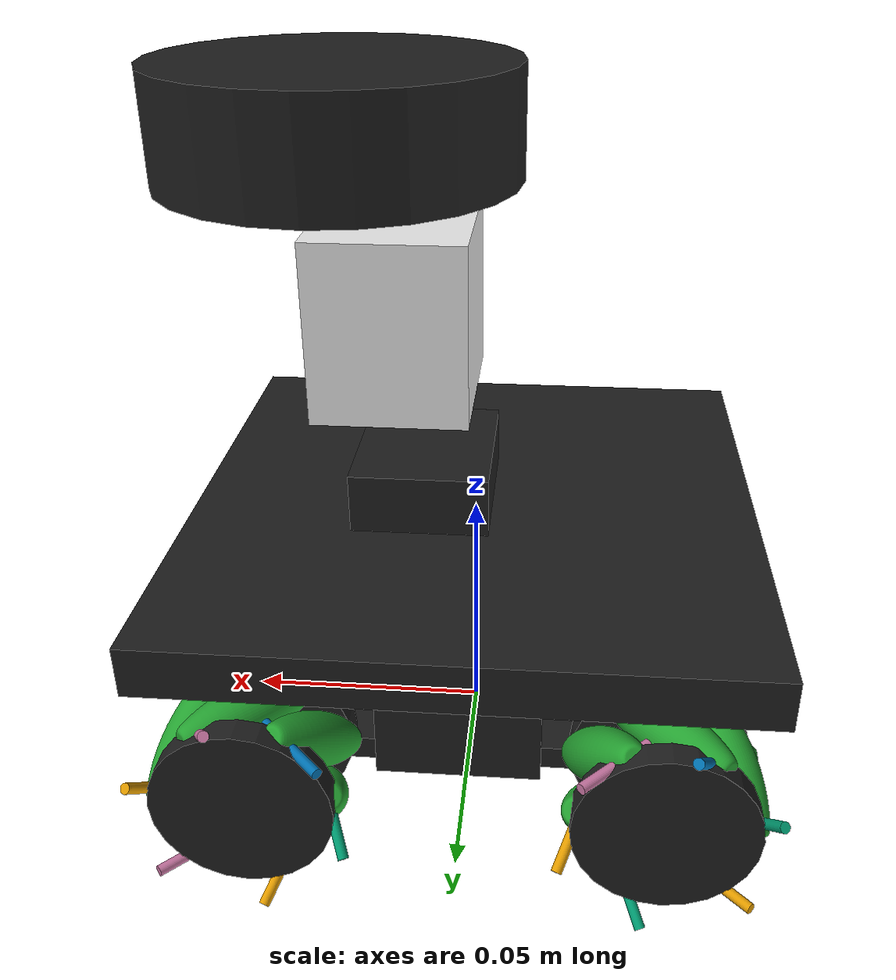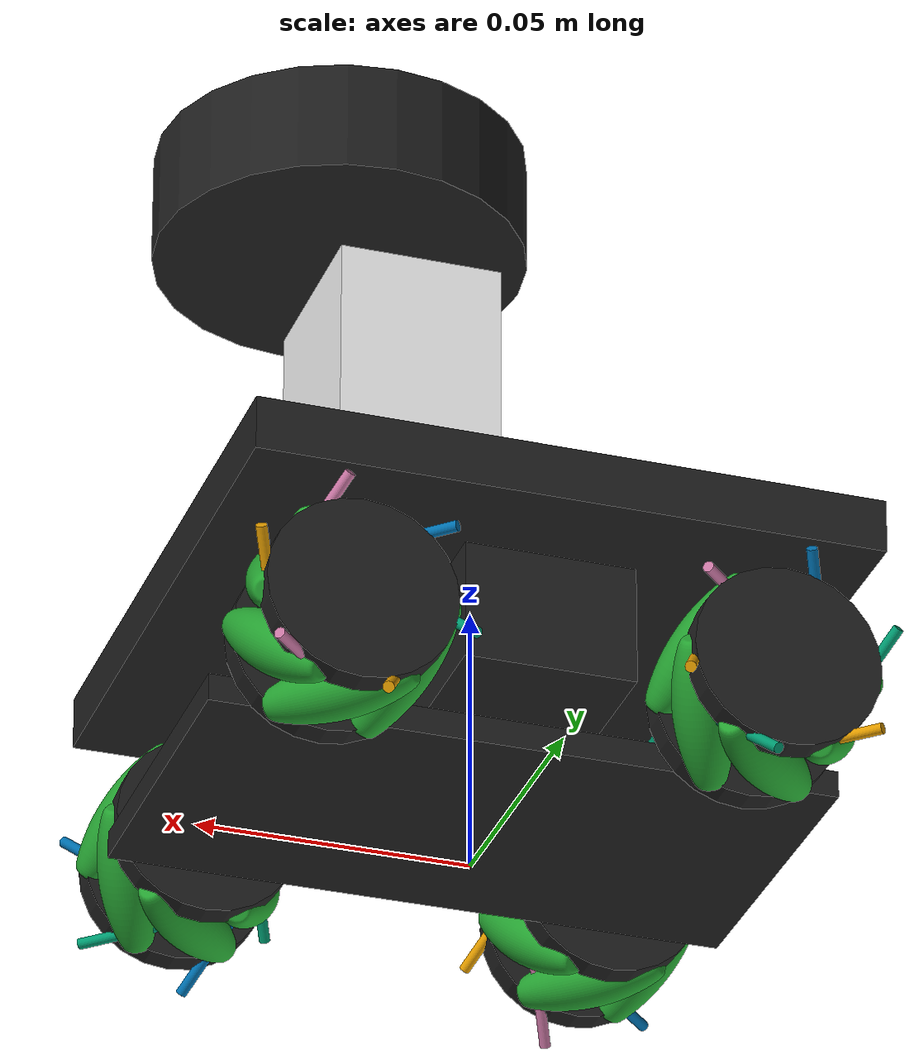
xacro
<?xml version="1.0"?>
<robot name="omniduino" xmlns:xacro="http://ros.org/wiki/xacro">
  <link name="base_link" />

  <xacro:include filename="$(find omniduino_description)/urdf/mecanum37.urdf.xacro" />
  <xacro:include filename="$(find omniduino_description)/urdf/N20GearedMotor.urdf.xacro" />
  <xacro:include filename="$(find omniduino_description)/urdf/light_sensor.urdf.xacro" />
  <xacro:include filename="$(find omniduino_description)/urdf/camera.urdf.xacro" />
  <xacro:include filename="$(find omniduino_description)/urdf/imu.urdf.xacro" />
  <xacro:include filename="$(find omniduino_description)/urdf/sus.urdf.xacro" />
  <xacro:include filename="$(find omniduino_description)/urdf/main.urdf.xacro" />
  <xacro:include filename="$(find omniduino_description)/urdf/lidar_camsensex1.urdf.xacro" />

  <xacro:macro name="wheel_module" params="number rot parent_link joint_xyz joint_rpy">
    <xacro:sus_module prefix="sus${number}" parent="${parent_link}" child="" xyz="${joint_xyz}" rpy="${joint_rpy}"/>
    <xacro:N20_motor prefix="motor${number}" parent_link="sus${number}_link" joint_xyz="0 0 0" joint_rpy="0 0 0"/>
    <xacro:mecanum_wheel prefix="wheel${number}" parent_link="motor${number}_shaft_link" rot="${rot}" joint_xyz="0 0 0.008" joint_rpy="0 0 0"/>
  </xacro:macro>

  <xacro:wheel_module number="1" rot="-1" parent_link="base_plate_link" joint_xyz=" 0.038  0.0155 0.00825" joint_rpy="0 0 ${ pi/2}" />
  <xacro:wheel_module number="2" rot=" 1" parent_link="base_plate_link" joint_xyz="-0.038  0.0155 0.00825" joint_rpy="0 0 ${ pi/2}" />
  <xacro:wheel_module number="3" rot=" 1" parent_link="base_plate_link" joint_xyz=" 0.038 -0.0155 0.00825" joint_rpy="0 0 ${-pi/2}" />
  <xacro:wheel_module number="4" rot="-1" parent_link="base_plate_link" joint_xyz="-0.038 -0.0155 0.00825" joint_rpy="0 0 ${-pi/2}" />

  <xacro:gazebo_light_sensor name="front"  parent="controll_borad_link" xyz=" 0.05     0  0" direction="${-pi/2}" />
  <xacro:gazebo_light_sensor name="fleft"  parent="controll_borad_link" xyz=" 0.05  0.05  0" direction="${-pi/4}" />
  <xacro:gazebo_light_sensor name="fright" parent="controll_borad_link" xyz=" 0.05 -0.05  0" direction="${-pi/4*3}" />
  <xacro:gazebo_light_sensor name="rleft"  parent="controll_borad_link" xyz="-0.05  0.05  0" direction="${ pi/4}" />
  <xacro:gazebo_light_sensor name="rright" parent="controll_borad_link" xyz="-0.05 -0.05  0" direction="${ pi/4*3}" />

  <xacro:imu_macro parent="controll_borad_link" prefix="imu" xyz="0 0 0" />

  <xacro:camera_macro parent="camera_link" prefix="camera1" xyz="0.015 0 0" />

  <xacro:laser_macro parent="camera_link" prefix="lidar1" xyz="0.01 0 0.035" />
  <gazebo>
    <plugin name="gazebo_ros_control" filename="libgazebo_ros_control.so">
      <robotNamespace>/omniduino</robotNamespace>
      <robotSimType>gazebo_ros_control/DefaultRobotHWSim</robotSimType>
      <legacyModeNS>true</legacyModeNS>
    </plugin>
  </gazebo>

</robot>

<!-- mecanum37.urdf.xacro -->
<robot name="mecanum37" xmlns:xacro="http://ros.org/wiki/xacro">

  <xacro:macro name="cylinder_inertial" params="mass radius length">
	<mass value="${mass}"/>
	<inertia ixx="${((radius*radius)/4 + (length*length)/12)*mass}" ixy="0" ixz="0"
			 iyy="${((radius*radius)/4 + (length*length)/12)*mass}" iyz="0"
			 izz="${(mass*radius*radius)/2}" />
  </xacro:macro>

  <xacro:macro name="wheel_shaft" params="prefix parent_link joint_xyz joint_rpy">
    <link name="${prefix}_shaft">
      <visual><geometry>
        <cylinder radius="0.005" length="0.024" />
      </geometry><material name="black"/></visual>
      <inertial><xacro:cylinder_inertial mass="0.01" radius="0.009" length="0.024" /></inertial>
    </link>
    <joint name="${prefix}_shaft_joint" type="fixed">
      <parent link="${parent_link}" />
      <child  link="${prefix}_shaft" />
      <origin xyz="${joint_xyz}" rpy="${joint_rpy}" />
      <dynamics damping="0.00001" friction="0.0" />
    </joint>
  </xacro:macro>

  <xacro:macro name="wheel_frame" params="prefix inout to_shaft_length">
    <link name="${prefix}_${inout}_frame">
      <visual><geometry>
        <cylinder radius="0.017" length="0.005" />
      </geometry><material name="black"/></visual>
      <inertial><xacro:cylinder_inertial mass="0.0001" radius="0.017" length="0.0381" /></inertial>
    </link>
    <joint name="${prefix}_${inout}_frame" type="fixed">
      <parent link="${prefix}_shaft" />
      <child  link="${prefix}_${inout}_frame" />
      <origin xyz="0 0 ${to_shaft_length}" rpy="0 0 0" />
    </joint>
    <gazebo reference="${prefix}_${inout}_frame">
      <material>Gazebo/Black</material>
    </gazebo>
  </xacro:macro>

  <xacro:macro name="barrel" params="prefix num dir rot">
    <link name="${prefix}_barrel${num}_link">
      <visual><geometry>
          <mesh filename="package://omniduino_description/meshes/ffbarrel.stl" />
      </geometry></visual>
      <collision><geometry>
          <mesh filename="package://omniduino_description/meshes/ffbarrel.stl" />
      </geometry></collision>
      <inertial><xacro:cylinder_inertial mass="0.01225" radius="0.01" length="0.0261" /></inertial>
    </link>
    <joint name="${prefix}_barrel${num}_joint" type="continuous">
      <parent link="${prefix}_shaft"/>
      <child link="${prefix}_barrel${num}_link"/>
      <origin rpy="0 ${pi/4*rot} ${radians(dir)+pi/2}" xyz="${0.012975*cos(radians(dir))} ${0.012975*sin(radians(dir))} 0"/>
      <axis xyz="1 0 0"/>
      <dynamics damping="0.00001"  friction="0.0"/>
    </joint>
    <gazebo reference="${prefix}_barrel${num}_link">
      <material>Gazebo/Green</material>
      <mu1 value="2.5" />
      <mu2 value="2.5" />
      <kp value="50000" />
      <kd value="100" />
    </gazebo>
    <link name="${prefix}_rotation_checker${num}">
      <visual><geometry>
        <cylinder radius="0.001" length="0.024" />
      </geometry></visual>
    </link>
    <joint name="${prefix}_rotate_chk_joint${num}" type="fixed">
      <parent link="${prefix}_barrel${num}_link" />
      <child  link="${prefix}_rotation_checker${num}" />
      <origin xyz="0 0 0.01" rpy="0 0 0" />
    </joint>
  </xacro:macro>

  <xacro:macro name="barrels" params="prefix rot" >
    <xacro:barrel prefix="${prefix}"  num="0" dir="0"   rot="${rot}" />
    <xacro:barrel prefix="${prefix}"  num="1" dir="60"  rot="${rot}" />
    <xacro:barrel prefix="${prefix}"  num="2" dir="120" rot="${rot}" />
    <xacro:barrel prefix="${prefix}"  num="3" dir="180" rot="${rot}" />
    <xacro:barrel prefix="${prefix}"  num="4" dir="240" rot="${rot}" />
    <xacro:barrel prefix="${prefix}"  num="5" dir="300" rot="${rot}" />
  </xacro:macro>

  <xacro:macro name="mecanum_wheel" params="prefix parent_link rot joint_xyz joint_rpy">
    <xacro:wheel_shaft prefix="${prefix}" parent_link="${parent_link}" joint_xyz="${joint_xyz}" joint_rpy="${joint_rpy}"/>
    <xacro:wheel_frame prefix="${prefix}" inout="inside"  to_shaft_length=" 0.01" />
    <xacro:wheel_frame prefix="${prefix}" inout="outside" to_shaft_length="-0.01" />
    <xacro:barrels prefix="${prefix}" rot="${rot}" />
  </xacro:macro>

</robot>

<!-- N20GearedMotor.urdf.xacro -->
<robot name="N20GearedMotor" xmlns:xacro="http://ros.org/wiki/xacro">
  <xacro:macro name="box_inertial" params="mass height width depth">
	<mass value="${mass}"/>
	<inertia ixx="${(mass*(width*width+depth*depth))/12}" ixy="0" ixz="0"
			 iyy="${(mass*(height*height+depth*depth))/12}" iyz="0"
			 izz="${(mass*(height*height+width*width))/12}" />
  </xacro:macro>
  <xacro:macro name="cylinder_inertial" params="mass radius length">
	<mass value="${mass}"/>
	<inertia ixx="${((radius*radius)/4 + (length*length)/12)*mass}" ixy="0" ixz="0"
			 iyy="${((radius*radius)/4 + (length*length)/12)*mass}" iyz="0"
			 izz="${(mass*radius*radius)/2}" />
  </xacro:macro>

  <xacro:macro name="N20_motor" params="prefix parent_link joint_xyz joint_rpy">
    <link name="${prefix}_link" >
      <visual><geometry><box size="0.030 0.017 0.012" /></geometry></visual>
      <collision><geometry><box size="0.030 0.017 0.012" /></geometry></collision>
      <inertial><xacro:box_inertial mass="0.0147" height="0.030" width="0.017" depth="0.012"/></inertial>
    </link>
    <joint name="${prefix}_joint" type="fixed">
      <parent link="${parent_link}" />
      <child  link="${prefix}_link" />
      <origin xyz="${joint_xyz}" rpy="${joint_rpy}" />
    </joint>
    <link name="${prefix}_shaft_link">
      <visual><geometry><cylinder radius="0.00125" length="0.014" /></geometry></visual>
      <collision><geometry><cylinder radius="0.00125" length="0.014" /></geometry></collision>
      <inertial><xacro:cylinder_inertial mass="0.001" radius="0.00125" length="0.014" /></inertial>
    </link>
    <joint name="${prefix}_shaft_joint" type="continuous">
      <parent link="${prefix}_link" />
      <child  link="${prefix}_shaft_link" />
      <origin xyz="0.022 0 0" rpy="0 ${pi/2} 0"/>
      <axis xyz="0 0 1"/>
      <limit velocity="1.0" effort="20000" />
      <dynamics damping="0.001" friction="0.0" />
    </joint>
    <transmission name="${prefix}_shaft_trans">
      <type>transmission_interface/SimpleTransmission</type>
      <joint name="${prefix}_shaft_joint">
        <hardwareInterface>hardware_interface/VelocityJointInterface</hardwareInterface>
      </joint>
      <actuator name="${prefix}_shaft_motor">
        <hardwareInterface>hardware_interface/VelocityJointInterface</hardwareInterface>
        <mechanicalReduction>1</mechanicalReduction>
      </actuator>
    </transmission>
  </xacro:macro>
</robot>

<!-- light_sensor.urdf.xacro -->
<robot name="light_sensor" xmlns:xacro="http://ros.org/wiki/xacro">
<xacro:property name="light_range" value="0.18" />
<xacro:property name="min_range" value="0.01" />
<xacro:property name="max_range" value="0.06" />
<xacro:property name="PI" value="3.14159265358979" />
<xacro:macro name="gazebo_light_sensor" params="name parent xyz direction">
    <link name="${name}_sensor">
        <visual>
            <geometry>
                <box size="0.01 0.005 0.005" />
            </geometry>
        </visual>
        <inertial>
            <mass value="0.0001" />
            <inertia    ixx="0.0001" ixy="0" ixz="0"
                        iyx="0" iyy="0.0001" iyz="0"
                        izx="0" izy="0" izz="0.0001" />
        </inertial>
    </link>

    <joint name="${name}_sensor_joint" type="fixed">
        <parent link="${parent}" />
        <child link="${name}_sensor" />
        <origin xyz="${xyz}" rpy="0 0 ${90.0/180.0* PI + direction}" />
    </joint>
    <gazebo reference="${name}_sensor">
        <sensor type="ray" name="${name}_light_sensor">
            <pose>0 0 0 0 0 0</pose>
            <visualize>true</visualize>
            <update_rate>20</update_rate>
            <ray>
                <scan>
                    <horizontal>
                        <samples>10</samples>
                        <resolution>1</resolution>
                        <min_angle>-${light_range/2}</min_angle>
                        <max_angle>${light_range/2}</max_angle>
                    </horizontal>
                </scan>
                <range>
                    <min>${min_range}</min>
                    <max>${max_range}</max>
                    <resolution>0.001</resolution>
                </range>
                <noise>
                    <type>gaussian</type>
                    <mean>0.0</mean>
                    <stddev>0.005</stddev>
                </noise>
            </ray>
            <plugin name="gazebo_${name}_light_sensor_controller" filename="libgazebo_ros_laser.so">
                <topicName>/light_sensor/${name}/scan</topicName>
                <frameName>${name}_sensor</frameName>
            </plugin>
        </sensor>
    </gazebo>
</xacro:macro>
</robot>

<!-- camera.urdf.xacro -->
<robot xmlns:xacro="http://ros.org/wiki/xacro">
  <xacro:macro name="camera_macro" params="parent prefix xyz">
    <joint name="${prefix}_joint" type="fixed">
      <parent link="${parent}"/>
      <child  link="${prefix}_link"/>
      <origin xyz="${xyz}" rpy="${radians(-90)} 0 ${radians(-90)}"/>
    </joint>
    <link name="${prefix}_link"/>
    <gazebo reference="${prefix}_link">
      <sensor type="camera" name="${prefix}">
        <update_rate>10.0</update_rate>
        <camera name="${prefix}">
          <pose>0 0 0 0 ${radians(-90)} ${radians(90)}</pose>
          <horizontal_fov>1.3962634</horizontal_fov>
          <image>
            <width>800</width>
            <height>600</height>
            <format>R8G8B8</format>
          </image>
          <clip>
            <near>0.02</near>
            <far>300</far>
          </clip>
          <noise>
            <type>gaussian</type>
            <mean>0.0</mean>
            <stddev>0.007</stddev>
          </noise>
        </camera>
        <plugin name="camera_controller" filename="libgazebo_ros_camera.so">
          <alwaysOn>true</alwaysOn>
          <updateRate>0.0</updateRate>
          <cameraName>${prefix}</cameraName>
          <imageTopicName>image_raw</imageTopicName>
          <cameraInfoTopicName>camera_info</cameraInfoTopicName>
          <frameName>${prefix}_link</frameName>
          <hackBaseline>0.0</hackBaseline>
          <distortionK1>0.0</distortionK1>
          <distortionK2>0.0</distortionK2>
          <distortionK3>0.0</distortionK3>
          <distortionT1>0.0</distortionT1>
          <distortionT2>0.0</distortionT2>
        </plugin>
      </sensor>
    </gazebo>
  </xacro:macro>
</robot>

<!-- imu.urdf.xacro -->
<robot xmlns:xacro="http://ros.org/wiki/xacro">
  <xacro:macro name="imu_macro" params="parent prefix xyz">
    <link name="${prefix}_link" />
    <joint name="imu_joint" type="fixed">
      <parent link="${parent}" />
      <child  link="${prefix}_link" />
      <origin xyz="${xyz}" rpy="0 0 0" />
    </joint>
    <gazebo reference="${prefix}_link">
      <gravity>true</gravity>
      <sensor name="imu_sensor" type="imu">
        <always_on>true</always_on>
        <update_rate>100</update_rate>
        <visualize>true</visualize>
        <topic>data</topic>
        <plugin filename="libgazebo_ros_imu_sensor.so" name="imu_plugin">
          <topicName>${prefix}/data</topicName>
          <bodyName>${prefix}_link</bodyName>
          <updateRateHZ>10.0</updateRateHZ>
          <gaussianNoise>0.0</gaussianNoise>
          <xyzOffset>0 0 0</xyzOffset>
          <rpyOffset>0 0 0</rpyOffset>
          <frameName>${prefix}_link</frameName>
        </plugin>
        <pose>0 0 0 0 0 0</pose>
      </sensor>
    </gazebo>
  </xacro:macro>
</robot>

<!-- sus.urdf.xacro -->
<robot xmlns:xacro="http://ros.org/wiki/xacro">
  <xacro:macro name="sus_module" params="prefix parent child xyz rpy">
    <link name="${prefix}_link">
      <inertial>
        <mass value="0.010" />
        <inertia ixx="0.00001" ixy="0.0" ixz="0.0" iyy="0.00001" iyz="0.0" izz="0.00001" />
      </inertial>
    </link>
    <joint name="${prefix}_joint" type="prismatic">
      <parent link="${parent}" />
      <child  link="${prefix}_link" />
      <limit lower="-0.002" upper="0.002" effort="100" velocity="1.0" />
      <axis xyz="0 0 1" />
      <origin xyz="${xyz}" rpy="${rpy}" />
      <dynamics damping="0.01" />
    </joint>
    <transmission name="${prefix}_trans">
      <type>transmission_interface/SimpleTransmission</type>
      <joint name="${prefix}_joint">
          <hardwareInterface>hardware_interface/EffortJointInterface</hardwareInterface>
      </joint>
      <actuator name="${prefix}_motor">
        <hardwareInterface>hardware_interface/EffortJointInterface</hardwareInterface>
        <mechanismReduction>1</mechanismReduction>
      </actuator>
    </transmission>
    <gazebo reference="${prefix}_joint">
      <kp>50000</kp>
      <kd>500</kd>
    </gazebo>
  </xacro:macro>
</robot>

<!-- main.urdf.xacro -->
<robot xmlns:xacro="http://ros.org/wiki/xacro">
  <xacro:macro name="box_inertial" params="mass height width depth">
  <mass value="${mass}"/>
  <inertia  ixx="${(mass*(width*width+depth*depth))/12}" ixy="0" ixz="0"
            iyy="${(mass*(height*height+depth*depth))/12}" iyz="0"
            izz="${(mass*(height*height+width*width))/12}" />
  </xacro:macro>

  <link name="base_plate_link">
    <visual><geometry><box size="0.114 0.062 0.005" /></geometry><material name="black"/></visual>
    <collision><geometry><box size="0.114 0.062 0.005" /></geometry></collision>
    <inertial><xacro:box_inertial mass="1.0" height="0.114" width="0.062" depth="0.005"/></inertial>
  </link>
  <joint name="base_plate_link" type="fixed">
    <parent link="base_link" />
    <child  link="base_plate_link" />
    <origin xyz="0 0 0.01" />
  </joint>
  <gazebo reference="base_plate_link">
    <material>Gazebo/Black</material>
  </gazebo>

  <link name="battery_link">
    <visual><geometry><box size="0.031 0.088 0.022" /></geometry><material name="black"/></visual>
    <collision><geometry><box size="0.031 0.088 0.022" /></geometry></collision>
    <inertial><xacro:box_inertial mass="10.0" height="0.031" width="0.088" depth="0.022"/></inertial>
  </link>
  <joint name="battery_link_joint" type="fixed">
    <parent link="base_plate_link" />
    <child  link="battery_link" />
    <origin xyz="0 0 0.0175" />
  </joint>
  <gazebo reference="battery_link">
    <material>Gazebo/Black</material>
  </gazebo>

  <link name="controll_borad_link">
    <visual><geometry><box size="0.114 0.114 0.01" /></geometry><material name="black"/></visual>
    <collision><geometry><box size="0.085 0.085 0.01" /></geometry></collision>
    <inertial><xacro:box_inertial mass="0.50" height="0.114" width="0.114" depth="0.01"/></inertial>
  </link>
  <joint name="controll_board_link_joint" type="fixed">
    <parent link="battery_link" />
    <child  link="controll_borad_link" />
    <origin xyz="0 0 0.02" />
  </joint>
  <gazebo reference="controll_borad_link">
    <material>Gazebo/Black</material>
  </gazebo>

  <link name="servo_link">
    <visual><geometry><box size="0.0273 0.0325 0.012" /></geometry><material name="black"/></visual>
    <collision><geometry><box size="0.0273 0.0325 0.012" /></geometry></collision>
    <inertial><xacro:box_inertial mass="1.0" height="0.0273" width="0.0325" depth="0.012"/></inertial>
  </link>
  <joint name="servo_link_joint" type="fixed">
    <parent link="controll_borad_link" />
    <child  link="servo_link" />
    <origin xyz="0.01 0 0.011" />
  </joint>
  <gazebo reference="servo_link">
    <material>Gazebo/Black</material>
  </gazebo>

  <link name="camera_base_link"/>
  <link name="camera_link">
    <visual><geometry><box size="0.030 0.035 0.035" /></geometry><material name="white"/></visual>
    <collision><geometry><box size="0.030 0.035 0.035" /></geometry></collision>
    <inertial><xacro:box_inertial mass="0.1" height="0.030" width="0.035" depth="0.035"/></inertial>
  </link>
  <joint name="camera_base_link_joint" type="revolute">
    <parent link="servo_link" />
    <child  link="camera_base_link" />
    <origin xyz="0.005 0 0" />
    <axis xyz="0 1 0" />
    <limit lower="${-20.0/180.0*pi}" upper="${20.0/180.0*pi}" effort="0.2" velocity="5" />
    <dynamics damping="0.01" friction="0.0" />
  </joint>
  <transmission name="camera_trans">
    <type>transmission_interface/SimpleTransmission</type>
    <joint name="camera_base_link_joint">
      <hardwareInterface>hardware_interface/EffortJointInterface</hardwareInterface>
    </joint>
    <actuator name="camera_servo_motor">
      <hardwareInterface>hardware_interface/EffortJointInterface</hardwareInterface>
      <mechanismReduction>1</mechanismReduction>
    </actuator>
  </transmission>
  <joint name="camera_link_joint" type="fixed">
    <parent link="camera_base_link" />
    <child  link="camera_link" />
    <origin xyz="0 0 0.035" />
    <dynamics damping="0.0" friction="0.0" />
  </joint>

</robot>

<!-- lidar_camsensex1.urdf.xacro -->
<robot xmlns:xacro="http://ros.org/wiki/xacro">
  <xacro:macro name="laser_macro" params="parent prefix xyz">
    <joint name="${prefix}_joint" type="fixed">
      <parent link="${parent}"/>
      <child  link="${prefix}_link"/>
      <origin xyz="${xyz}" rpy="0 0 0"/>
    </joint>
    <link name="${prefix}_link">
      <visual>
        <origin xyz="0 0 0" rpy="0 0 0" />
        <geometry>
          <cylinder radius="0.034" length="0.021" />
        </geometry>
        <material name="black" />
      </visual>
      <collision>
        <origin xyz="0 0 0" rpy="0 0 0"/>
        <geometry>
          <cylinder radius="0.01" length="0.01" />
        </geometry>
      </collision>
    </link>
    <gazebo reference="${prefix}_link">
      <material>Gazebo/Black</material>
      <sensor type="ray" name="${prefix}">
        <pose>0 0 0 0 0 0</pose>
        <visualize>false</visualize>
        <update_rate>10</update_rate>
        <ray>
          <scan>
            <horizontal>
              <samples>416</samples>
              <resolution>1</resolution>
              <min_angle>${radians(-180)}</min_angle>
              <max_angle>${radians( 180)}</max_angle>
            </horizontal>
          </scan>
          <range>
            <min>0.10</min>
            <max>4.0</max>
            <resolution>0.01</resolution>
          </range>
          <noise>
            <type>gaussian</type>
            <mean>0.0</mean>
            <stddev>0.01</stddev>
          </noise>
        </ray>
        <plugin name="gazebo_ros_lidar_controller" filename="libgazebo_ros_laser.so">
          <topicName>/${prefix}_link/scan</topicName>
          <frameName>${prefix}_link</frameName>
        </plugin>
      </sensor>
    </gazebo>
  </xacro:macro>
</robot>
